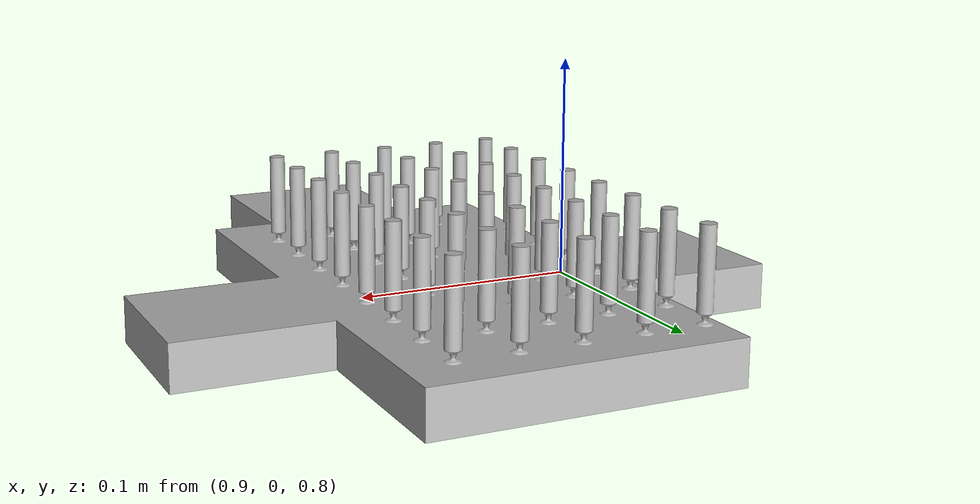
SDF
<sdf version="1.6">
  <model name="piece">
    <pose>1.075718 0.25 0.86 -1.5707896 0.0 0.0</pose>
    <static>true</static>
    <link name="link">
      <visual name="visual">
        <geometry>
          <mesh>
            <uri>file:///home/agonzalezhernandez/temp_ws/src/cell_envir/urdf/piece_description/part1_updated.stl</uri>
            <scale>0.001 0.001 0.001</scale>
          </mesh>
        </geometry>
      </visual>
    </link>
  </model>
</sdf>
